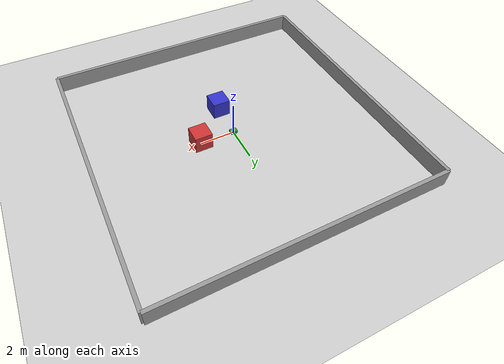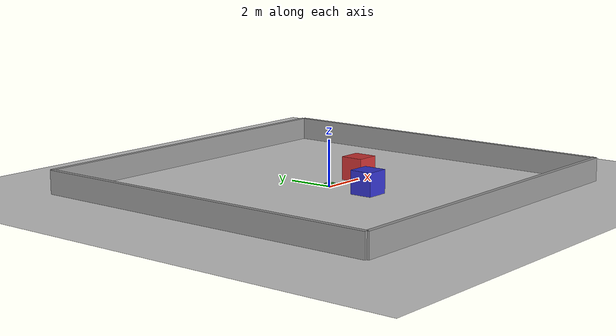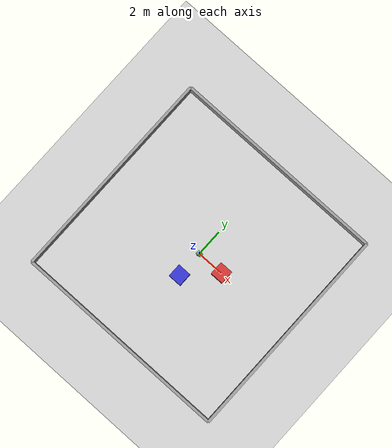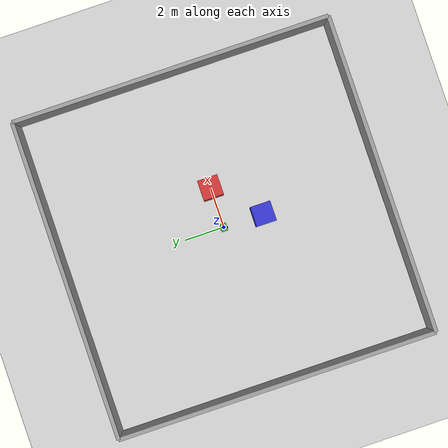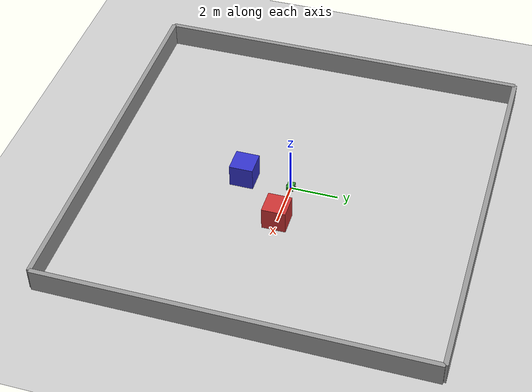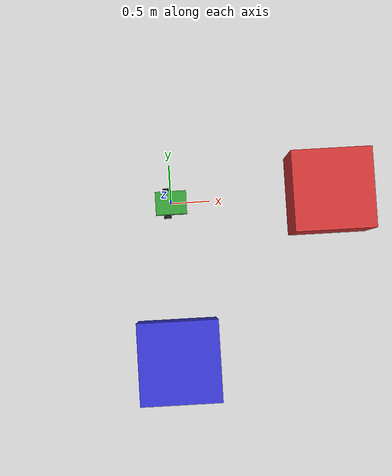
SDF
<?xml version="1.0" ?>
<sdf version="1.9">
  <world name="diff_drive_world">
    <physics name="1ms" type="ode">
      <max_step_size>0.001</max_step_size>
      <real_time_factor>1.0</real_time_factor>
    </physics>

    <plugin filename="gz-sim-physics-system" name="gz::sim::systems::Physics"/>
    <plugin filename="gz-sim-sensors-system" name="gz::sim::systems::Sensors">
      <render_engine>ogre2</render_engine>
    </plugin>
    <plugin filename="gz-sim-scene-broadcaster-system" name="gz::sim::systems::SceneBroadcaster"/>
    <plugin filename="gz-sim-user-commands-system" name="gz::sim::systems::UserCommands"/>

    <light type="directional" name="sun">
      <cast_shadows>true</cast_shadows>
      <pose>0 0 10 0 0 0</pose>
      <diffuse>0.8 0.8 0.8 1</diffuse>
      <specular>0.2 0.2 0.2 1</specular>
      <attenuation>
        <range>1000</range>
        <constant>0.9</constant>
        <linear>0.01</linear>
        <quadratic>0.001</quadratic>
      </attenuation>
      <direction>-0.5 0.1 -0.9</direction>
    </light>

    <model name="ground_plane">
      <static>true</static>
      <link name="link">
        <collision name="collision">
          <geometry>
            <plane>
              <normal>0 0 1</normal>
              <size>100 100</size>
            </plane>
          </geometry>
        </collision>
        <visual name="visual">
          <geometry>
            <plane>
              <normal>0 0 1</normal>
              <size>100 100</size>
            </plane>
          </geometry>
          <material>
            <ambient>0.8 0.8 0.8 1</ambient>
            <diffuse>0.8 0.8 0.8 1</diffuse>
            <specular>0.8 0.8 0.8 1</specular>
          </material>
        </visual>
      </link>
    </model>

    <!-- A couple of boxes so the lidar has something to see -->
    <model name="box_1">
      <static>true</static>
      <pose>2 0 0.5 0 0 0</pose>
      <link name="link">
        <collision name="collision">
          <geometry><box><size>1 1 1</size></box></geometry>
        </collision>
        <visual name="visual">
          <geometry><box><size>1 1 1</size></box></geometry>
          <material>
            <ambient>0.8 0.2 0.2 1</ambient>
            <diffuse>0.8 0.2 0.2 1</diffuse>
          </material>
        </visual>
      </link>
    </model>

    <model name="box_2">
      <static>true</static>
      <pose>0 -2 0.5 0 0 0</pose>
      <link name="link">
        <collision name="collision">
          <geometry><box><size>1 1 1</size></box></geometry>
        </collision>
        <visual name="visual">
          <geometry><box><size>1 1 1</size></box></geometry>
          <material>
            <ambient>0.2 0.2 0.8 1</ambient>
            <diffuse>0.2 0.2 0.8 1</diffuse>
          </material>
        </visual>
      </link>
    </model>

    <!-- Enclosing walls so every lidar ray always hits something within
         range, no matter where the robot drives inside the arena. -->
    <model name="arena_walls">
      <static>true</static>
      <link name="link">
        <collision name="wall_north_collision">
          <pose>0 8 0.5 0 0 0</pose>
          <geometry><box><size>16 0.2 1</size></box></geometry>
        </collision>
        <visual name="wall_north_visual">
          <pose>0 8 0.5 0 0 0</pose>
          <geometry><box><size>16 0.2 1</size></box></geometry>
          <material>
            <ambient>0.6 0.6 0.6 1</ambient>
            <diffuse>0.6 0.6 0.6 1</diffuse>
          </material>
        </visual>

        <collision name="wall_south_collision">
          <pose>0 -8 0.5 0 0 0</pose>
          <geometry><box><size>16 0.2 1</size></box></geometry>
        </collision>
        <visual name="wall_south_visual">
          <pose>0 -8 0.5 0 0 0</pose>
          <geometry><box><size>16 0.2 1</size></box></geometry>
          <material>
            <ambient>0.6 0.6 0.6 1</ambient>
            <diffuse>0.6 0.6 0.6 1</diffuse>
          </material>
        </visual>

        <collision name="wall_east_collision">
          <pose>8 0 0.5 0 0 0</pose>
          <geometry><box><size>0.2 16 1</size></box></geometry>
        </collision>
        <visual name="wall_east_visual">
          <pose>8 0 0.5 0 0 0</pose>
          <geometry><box><size>0.2 16 1</size></box></geometry>
          <material>
            <ambient>0.6 0.6 0.6 1</ambient>
            <diffuse>0.6 0.6 0.6 1</diffuse>
          </material>
        </visual>

        <collision name="wall_west_collision">
          <pose>-8 0 0.5 0 0 0</pose>
          <geometry><box><size>0.2 16 1</size></box></geometry>
        </collision>
        <visual name="wall_west_visual">
          <pose>-8 0 0.5 0 0 0</pose>
          <geometry><box><size>0.2 16 1</size></box></geometry>
          <material>
            <ambient>0.6 0.6 0.6 1</ambient>
            <diffuse>0.6 0.6 0.6 1</diffuse>
          </material>
        </visual>
      </link>
    </model>

    <model name="vehicle">
      <pose>0 0 0.1 0 0 0</pose>

      <link name="chassis">
        <pose>0 0 0 0 0 0</pose>
        <inertial>
          <mass>5.0</mass>
          <inertia>
            <ixx>0.0625</ixx>
            <iyy>0.125</iyy>
            <izz>0.125</izz>
            <ixy>0</ixy>
            <ixz>0</ixz>
            <iyz>0</iyz>
          </inertia>
        </inertial>
        <collision name="chassis_collision">
          <geometry>
            <box><size>0.4 0.3 0.15</size></box>
          </geometry>
        </collision>
        <visual name="chassis_visual">
          <geometry>
            <box><size>0.4 0.3 0.15</size></box>
          </geometry>
          <material>
            <ambient>0.2 0.6 0.2 1</ambient>
            <diffuse>0.2 0.6 0.2 1</diffuse>
          </material>
        </visual>

        <sensor name="gpu_lidar" type="gpu_lidar">
          <pose>0.15 0 0.1 0 0 0</pose>
          <topic>scan</topic>
          <update_rate>10</update_rate>
          <always_on>true</always_on>
          <visualize>false</visualize>
          <lidar>
            <scan>
              <horizontal>
                <samples>360</samples>
                <resolution>1</resolution>
                <min_angle>-3.141592653589793</min_angle>
                <max_angle>3.141592653589793</max_angle>
              </horizontal>
              <vertical>
                <samples>1</samples>
                <resolution>1</resolution>
                <min_angle>0</min_angle>
                <max_angle>0</max_angle>
              </vertical>
            </scan>
            <range>
              <min>0.08</min>
              <max>30.0</max>
              <resolution>0.01</resolution>
            </range>
          </lidar>
        </sensor>
      </link>

      <link name="left_wheel">
        <pose>-0.05 0.175 -0.05 -1.5707963267948966 0 0</pose>
        <inertial>
          <mass>0.5</mass>
          <inertia>
            <ixx>0.00072</ixx>
            <iyy>0.00072</iyy>
            <izz>0.00125</izz>
            <ixy>0</ixy>
            <ixz>0</ixz>
            <iyz>0</iyz>
          </inertia>
        </inertial>
        <collision name="left_wheel_collision">
          <geometry>
            <cylinder><radius>0.05</radius><length>0.04</length></cylinder>
          </geometry>
          <surface>
            <friction>
              <ode>
                <mu>1.0</mu>
                <mu2>1.0</mu2>
              </ode>
            </friction>
          </surface>
        </collision>
        <visual name="left_wheel_visual">
          <geometry>
            <cylinder><radius>0.05</radius><length>0.04</length></cylinder>
          </geometry>
          <material>
            <ambient>0.1 0.1 0.1 1</ambient>
            <diffuse>0.1 0.1 0.1 1</diffuse>
          </material>
        </visual>
      </link>

      <link name="right_wheel">
        <pose>-0.05 -0.175 -0.05 -1.5707963267948966 0 0</pose>
        <inertial>
          <mass>0.5</mass>
          <inertia>
            <ixx>0.00072</ixx>
            <iyy>0.00072</iyy>
            <izz>0.00125</izz>
            <ixy>0</ixy>
            <ixz>0</ixz>
            <iyz>0</iyz>
          </inertia>
        </inertial>
        <collision name="right_wheel_collision">
          <geometry>
            <cylinder><radius>0.05</radius><length>0.04</length></cylinder>
          </geometry>
          <surface>
            <friction>
              <ode>
                <mu>1.0</mu>
                <mu2>1.0</mu2>
              </ode>
            </friction>
          </surface>
        </collision>
        <visual name="right_wheel_visual">
          <geometry>
            <cylinder><radius>0.05</radius><length>0.04</length></cylinder>
          </geometry>
          <material>
            <ambient>0.1 0.1 0.1 1</ambient>
            <diffuse>0.1 0.1 0.1 1</diffuse>
          </material>
        </visual>
      </link>

      <link name="caster_wheel">
        <pose>0.15 0 -0.09 0 0 0</pose>
        <inertial>
          <mass>0.2</mass>
          <inertia>
            <ixx>0.0001</ixx>
            <iyy>0.0001</iyy>
            <izz>0.0001</izz>
            <ixy>0</ixy>
            <ixz>0</ixz>
            <iyz>0</iyz>
          </inertia>
        </inertial>
        <collision name="caster_collision">
          <geometry>
            <sphere><radius>0.025</radius></sphere>
          </geometry>
          <surface>
            <friction>
              <ode>
                <mu>0.0</mu>
                <mu2>0.0</mu2>
              </ode>
            </friction>
          </surface>
        </collision>
        <visual name="caster_visual">
          <geometry>
            <sphere><radius>0.025</radius></sphere>
          </geometry>
        </visual>
      </link>

      <joint name="left_wheel_joint" type="revolute">
        <parent>chassis</parent>
        <child>left_wheel</child>
        <axis>
          <xyz>0 0 1</xyz>
          <limit>
            <lower>-1.79769e+308</lower>
            <upper>1.79769e+308</upper>
          </limit>
        </axis>
      </joint>

      <joint name="right_wheel_joint" type="revolute">
        <parent>chassis</parent>
        <child>right_wheel</child>
        <axis>
          <xyz>0 0 1</xyz>
          <limit>
            <lower>-1.79769e+308</lower>
            <upper>1.79769e+308</upper>
          </limit>
        </axis>
      </joint>

      <joint name="caster_wheel_joint" type="ball">
        <parent>chassis</parent>
        <child>caster_wheel</child>
      </joint>

      <plugin filename="gz-sim-diff-drive-system" name="gz::sim::systems::DiffDrive">
        <left_joint>left_wheel_joint</left_joint>
        <right_joint>right_wheel_joint</right_joint>
        <wheel_separation>0.35</wheel_separation>
        <wheel_radius>0.05</wheel_radius>
        <odom_publish_frequency>20</odom_publish_frequency>
        <topic>cmd_vel</topic>
        <tf_topic>tf</tf_topic>
        <frame_id>odom</frame_id>
        <child_frame_id>chassis</child_frame_id>
      </plugin>

      <plugin filename="gz-sim-joint-state-publisher-system" name="gz::sim::systems::JointStatePublisher"/>

    </model>

  </world>
</sdf>
